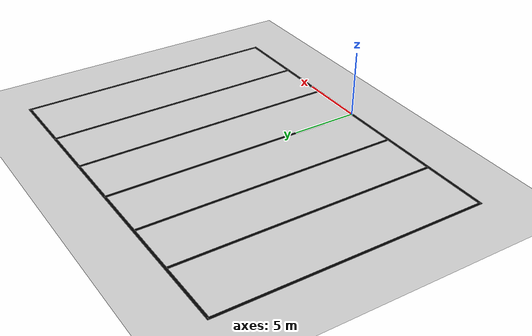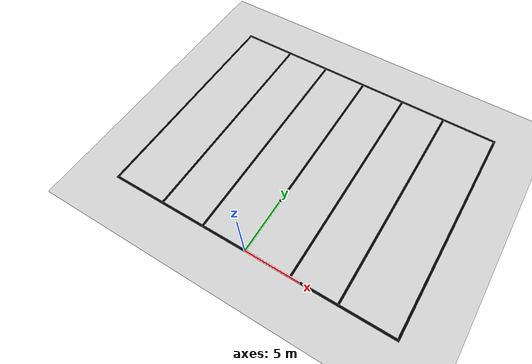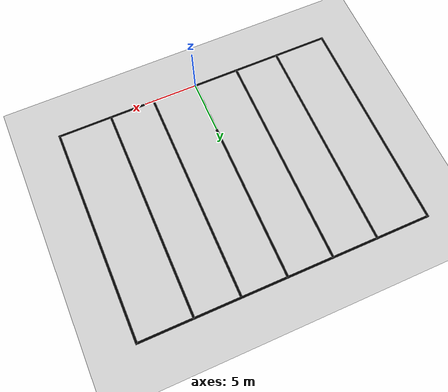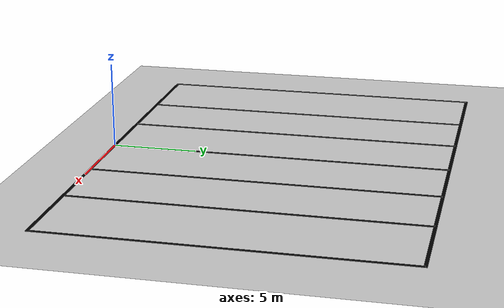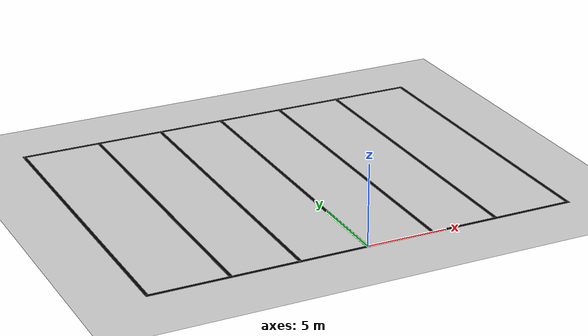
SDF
<?xml version="1.0" ?>
<sdf version="1.5">
  <world name="parkur">
    <!-- A global light source -->
    <include>
      <uri>model://sun</uri>
    </include>

    <!-- A ground plane -->
    <include>
      <uri>model://ground_plane</uri>
    </include>

    <!-- Çizgiler -->
    <!-- Sol sınır çizgisi -->
    <model name="left_line">
      <static>true</static>
      <link name="line_link">
        <visual name="line_visual">
          <geometry>
            <box>
              <size>0.2 20 0.01</size>
            </box>
          </geometry>
          <material>
            <ambient>0 0 0 1</ambient>
            <diffuse>0 0 0 1</diffuse>
          </material>
        </visual>
      </link>
      <pose>-13.2 10 0.005 0 0 0</pose>
    </model>

    <!-- Sağ sınır çizgisi -->
    <model name="right_line">
      <static>true</static>
      <link name="line_link">
        <visual name="line_visual">
          <geometry>
            <box>
              <size>0.2 20 0.01</size>
            </box>
          </geometry>
          <material>
            <ambient>0 0 0 1</ambient>
            <diffuse>0 0 0 1</diffuse>
          </material>
        </visual>
      </link>
      <pose>13.2 10 0.005 0 0 0</pose>
    </model>

    <!-- Üst çizgi -->
    <model name="top_line">
      <static>true</static>
      <link name="line_link">
        <visual name="line_visual">
          <geometry>
            <box>
              <size>26.6 0.2 0.01</size>
            </box>
          </geometry>
          <material>
            <ambient>0 0 0 1</ambient>
            <diffuse>0 0 0 1</diffuse>
          </material>
        </visual>
      </link>
      <pose>0 20 0.005 0 0 0</pose>
    </model>

    <!-- Alt çizgi -->
    <model name="bottom_line">
      <static>true</static>
      <link name="line_link">
        <visual name="line_visual">
          <geometry>
           <box>
              <size>26.6 0.2 0.01</size>
            </box>
          </geometry>
          <material>
            <ambient>0 0 0 1</ambient>
            <diffuse>0 0 0 1</diffuse>
          </material>
        </visual>
      </link>
      <pose>0 0 0.005 0 0 0</pose>
    </model>

   <!-- Dikey orta çizgi 1-->
    <model name="vertical_line_1">
      <static>true</static>
      <link name="line_link">
        <visual name="line_visual">
          <geometry>
            <box>
              <size>0.2 20 0.01</size>
            </box>
          </geometry>
          <material>
            <ambient>0 0 0 1</ambient>
            <diffuse>0 0 0 1</diffuse>
          </material>
        </visual>
      </link>
      <pose>-8.32 10 0.005 0 0 0</pose>
    </model>

    <!-- Dikey orta çizgi 2-->
    <model name="vertical_line_2">
      <static>true</static>
      <link name="line_link">
        <visual name="line_visual">
          <geometry>
            <box>
              <size>0.2 20 0.01</size>
            </box>
          </geometry>
          <material>
            <ambient>0 0 0 1</ambient>
            <diffuse>0 0 0 1</diffuse>
          </material>
        </visual>
      </link>
      <pose>-4.16 10 0.005 0 0 0</pose>
    </model>

    <!-- Dikey orta çizgi 3-->
    <model name="vertical_line_3">
      <static>true</static>
      <link name="line_link">
        <visual name="line_visual">
          <geometry>
            <box>
              <size>0.2 20 0.01</size>
            </box>
          </geometry>
          <material>
            <ambient>0 0 0 1</ambient>
            <diffuse>0 0 0 1</diffuse>
          </material>
        </visual>
      </link>
      <pose>0 10 0.005 0 0 0</pose>
    </model>

    <!-- Dikey orta çizgi 4-->
    <model name="vertical_line_4">
      <static>true</static>
      <link name="line_link">
        <visual name="line_visual">
          <geometry>
            <box>
              <size>0.2 20 0.01</size>
            </box>
          </geometry>
          <material>
            <ambient>0 0 0 1</ambient>
            <diffuse>0 0 0 1</diffuse>
          </material>
        </visual>
      </link>
      <pose>4.16 10 0.005 0 0 0</pose>
    </model>

    <!-- Dikey orta çizgi 5-->
    <model name="vertical_line_5">
      <static>true</static>
      <link name="line_link">
        <visual name="line_visual">
          <geometry>
            <box>
              <size>0.2 20 0.01</size>
            </box>
          </geometry>
          <material>
            <ambient>0 0 0 1</ambient>
            <diffuse>0 0 0 1</diffuse>
          </material>
        </visual>
      </link>
      <pose>8.32 10 0.005 0 0 0</pose>
    </model>
  </world>
</sdf>
